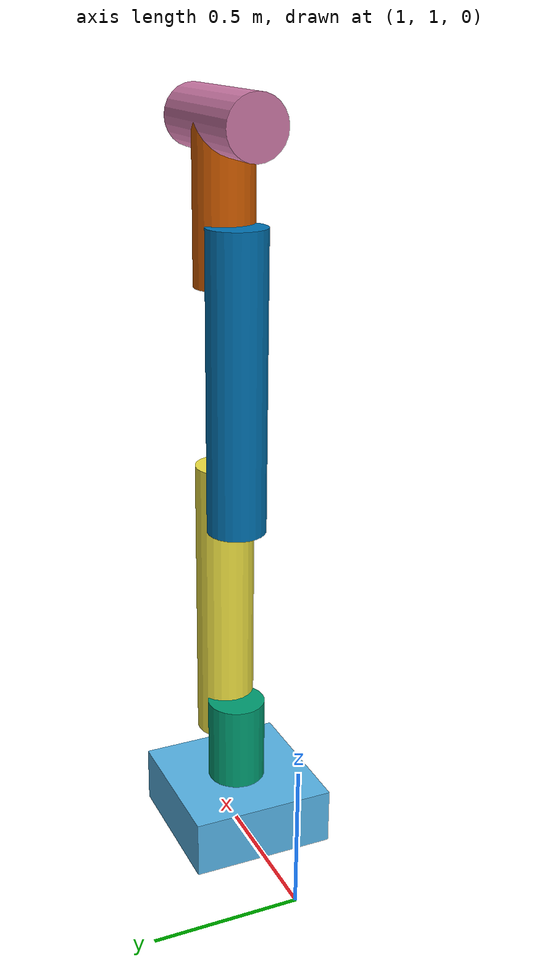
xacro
<?xml version="1.0"?>
<robot xmlns:xacro="http://ros.org/wiki/xacro">

    <xacro:property name="base_height" value="0.2" />
    <xacro:property name="l1_height" value="0.3" />
    <xacro:property name="l1_radius" value="0.1" />
    <xacro:property name="l2_radius" value="0.1" />
    <xacro:property name="l2_height" value="1" />
    <xacro:property name="l3_radius" value="0.1" />
    <xacro:property name="l3_height" value="1" />
    <xacro:property name="l4_radius" value="0.1" />
    <xacro:property name="l4_height" value="0.5" />
    <xacro:property name="l5_radius" value="0.1" />
    <xacro:property name="l5_height" value="0.5" />
    <xacro:property name="polelen" value="0.2" />
    <xacro:property name="bodylen" value="0.6" />
    <xacro:property name="baselen" value="0.4" />
    <xacro:property name="wheeldiam" value="0.07" />

<!-- This first link called "world" is empty -->
  <link name="world"></link>

  <!-- A simple fixed joint from our empty world link, to our base. -->
  <!-- The base origin is offset from the world origin. -->
  <joint name="base_joint" type="fixed">
      <origin xyz="1.5 1.0 0" rpy="0 0 0"/>
      <parent link="world"/>
      <child link="base_link"/>
  </joint>

  <link name="base_link">
    <visual>
      <geometry>
        <box size="0.5 0.5 ${base_height}"/>
      </geometry>
      <origin rpy="0 0 0" xyz="0 0 ${base_height/2}"/>
    </visual>

    <collision>
      <geometry>
        <box size="0.5 0.5 ${base_height}"/>
      </geometry>
      <origin rpy="0 0 0" xyz="0 0 ${base_height/2}"/>
    </collision>

    <xacro:default_inertial mass="10"/>
  </link>

<link name="l1">
    <visual>
      <geometry>
        <cylinder length="${l1_height}" radius="${l1_radius}"/>
      </geometry>
      <origin rpy="0 0 0" xyz="0 0 ${l1_height/2}"/>
    </visual>
    <collision>
      <geometry>
        <cylinder length="${l1_height}" radius="${l1_radius}"/>
      </geometry>
      <origin rpy="0 0 0" xyz="0 0 ${l1_height/2}"/>
    </collision>
    <xacro:default_inertial mass="10"/>
  </link>

  <link name="l2">
    <visual>
      <geometry>
        <cylinder length="${l2_height}" radius="${l2_radius}"/>
      </geometry>
      <origin rpy="0 0 0" xyz="0 0 ${l2_height/2}"/>
    </visual>
    <collision>
      <geometry>
        <cylinder length="${l2_height}" radius="${l2_radius}"/>
      </geometry>
      <origin rpy="0 0 0" xyz="0 0 ${l2_height/2}"/>
    </collision>
    <xacro:default_inertial mass="10"/>
  </link>

  <link name="l3">
    <visual>
      <geometry>
        <cylinder length="${l3_height}" radius="${l3_radius}"/>
      </geometry>
      <origin rpy="0 0 0" xyz="0 0 ${l3_height/2}"/>
    </visual>
    <collision>
      <geometry>
        <cylinder length="${l3_height}" radius="${l3_radius}"/>
      </geometry>
      <origin rpy="0 0 0" xyz="0 0 ${l3_height/2}"/>
    </collision>
    <xacro:default_inertial mass="10"/>
  </link>

  <link name="l4">
    <visual>
      <geometry>
        <cylinder length="${l4_height}" radius="${l4_radius}"/>
      </geometry>
      <origin rpy="0 0 0" xyz="0 0 ${l4_height/2}"/>
    </visual>
    <collision>
      <geometry>
        <cylinder length="${l4_height}" radius="${l4_radius}"/>
      </geometry>
      <origin rpy="0 0 0" xyz="0 0 ${l4_height/2}"/>
    </collision>
    <xacro:default_inertial mass="10"/>
  </link>

  <link name="l5">
    <visual>
      <geometry>
        <cylinder length="${l5_height}" radius="${l5_radius}"/>
      </geometry>
      <origin rpy="${pi/2} 0 ${pi/2}" xyz="0 0 0"/>
    </visual>
    <collision>
      <geometry>
        <cylinder length="${l5_height}" radius="${l5_radius}"/>
      </geometry>
      <origin rpy="${pi/2} 0 ${pi/2}" xyz="0 0 0"/>
    </collision>
    <xacro:default_inertial mass="10"/>
  </link>

<joint name="j1" type="continuous">
        <axis xyz="0 0 1"/>
      <origin xyz="0 0 ${base_height}" rpy="0 0 0"/>
      <parent link="base_link"/>
      <child link="l1"/>
  </joint>

  <joint name="j2" type="revolute">
    <axis xyz="1 0 0"/>
    <limit effort="1000.0" lower="${-pi/2}" upper="${pi/2}" velocity="0.5"/>
    <origin xyz="${l1_radius} 0 ${l1_height-0.15}" rpy="0 0 0"/>
    <parent link="l1"/>
    <child link="l2"/>
</joint>

<joint name="j3" type="revolute">
    <axis xyz="1 0 0"/>
    <limit effort="1000.0" lower="${-2*pi/3}" upper="${2*pi/3}" velocity="0.5"/>
    <origin xyz="${-l2_radius} 0 ${l2_height-0.2}" rpy="0 0 0"/>
    <parent link="l2"/>
    <child link="l3"/>
</joint>

<joint name="j4" type="revolute">
    <axis xyz="1 0 0"/>
    <limit effort="1000.0" lower="${-2*pi/3}" upper="${2*pi/3}" velocity="0.5"/>
    <origin xyz="${l3_radius} 0 ${l3_height-0.2}" rpy="0 0 0"/>
    <parent link="l3"/>
    <child link="l4"/>
</joint>

<joint name="j5" type="revolute">
    <axis xyz="0 0 1"/>
    <limit effort="1000.0" lower="${-pi/2}" upper="${pi/2}" velocity="0.5"/>
    <origin xyz="0 0 ${l4_height}" rpy="0 0 0"/>
    <parent link="l4"/>
    <child link="l5"/>
</joint>

</robot>
